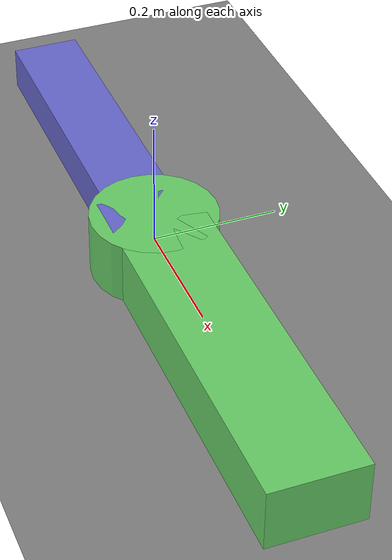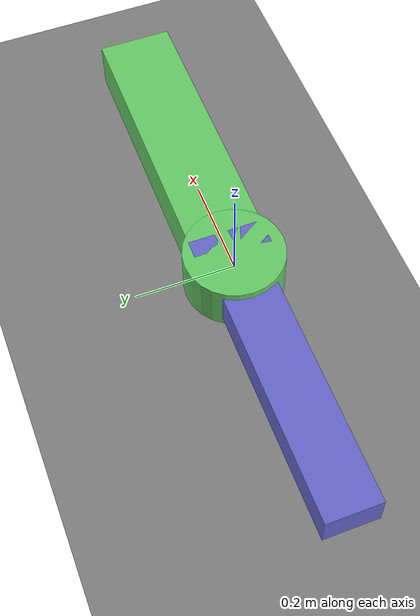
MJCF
<mujoco model='2_FHG_Rob_Model_1_friction'>

  <compiler coordinate='local'/>
  <option timestep='0.030303030303030304' gravity="0 0 0"/>

  <!-- Anfangspositionen definieren (zum Test) -->
  <keyframe>
    <key name="init_extended" qpos="0 0.9"/>
  </keyframe>

  <worldbody>
    <geom name='floor' pos='0 0 -0.1' size='4 4 4' type='plane' />
    <light name="main_light" pos="0 0 5" dir="0 0 -1" diffuse="1 1 1" specular="0.5 0.5 0.5" />

    <!-- Rotationsgelenk mit starrem Arm -->
    <body name="rotating_arm" pos="0 0 0">
      <joint name="joint1" type="hinge" axis="0 0 1" limited="false" damping="6"/>
      <geom type="box" size="0.3 0.075 0.05" pos="0.3 0 0" rgba="0.4 0.8 0.4 1"/>
      <geom type="cylinder" size="0.10 0.05" pos="0 0 0" rgba="0.4 0.8 0.4 1"/>

      <inertial pos="0 0 0" mass="0.0001" diaginertia="0.4 0.4 0.4"/>

      <!-- Endmasse -->
      <body name="end_mass" pos="0 0 0">
        <geom type="box" size="0.05 0.075 0.05" pos="0 0 0" rgba="0.4 0.4 0.8 1"/>
        <joint name="joint2" type="slide" axis="1 0 0" limited="false" damping="6"/>

        <!-- Endeffektor hinzufügen -->
        <site name="end_mass_site" pos="0 0 0" size="0.02" rgba="1 0 0 1"/>

        <inertial pos="0 0 0" mass="2" diaginertia="0.0001 0.0001 0.0001"/>

        <!-- Teleskoparm -->
        <body name="telescopic_link" pos="-0.25 0 0">
          <geom type="box" size="0.3 0.055 0.035" pos="0 0 0" rgba="0.4 0.4 0.8 1"/>

          <inertial pos="0 0 0" mass="5" diaginertia="0.0001 0.0001 0.0001"/>

        </body>
      </body>
    </body>
  </worldbody>

  <actuator>
  <!-- Moment Rotationsgelenk -->
  <motor name="motor_joint1" joint="joint1" gear="1"/>

  <!-- Kraft Schubgelenk -->
  <motor name="motor_joint2" joint="joint2" gear="1"/>
</actuator>

</mujoco>
